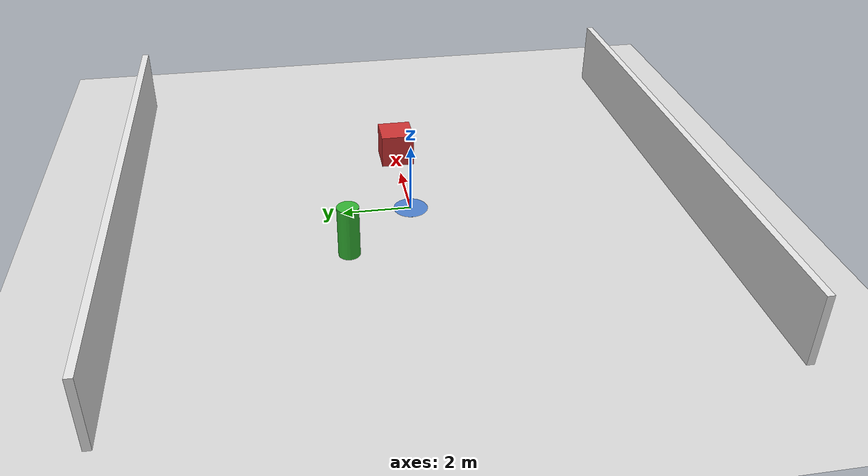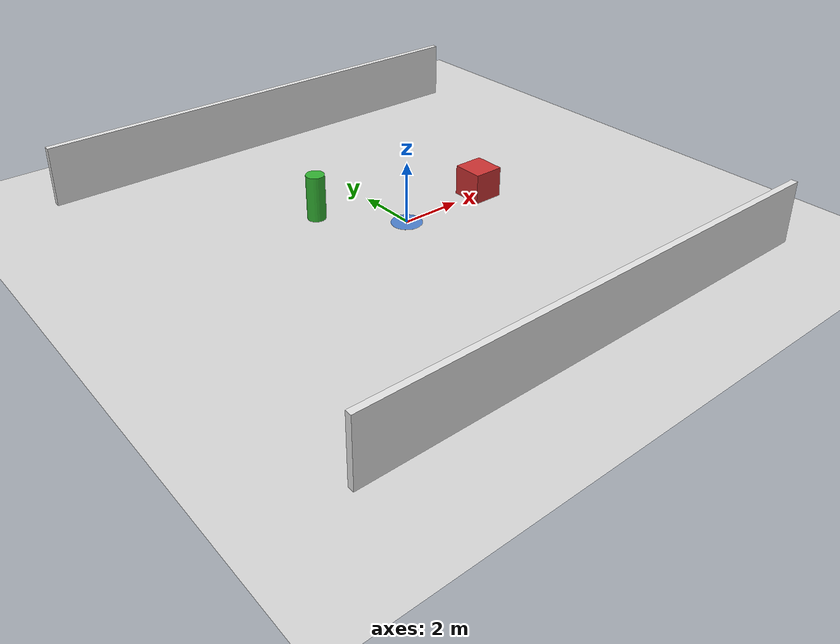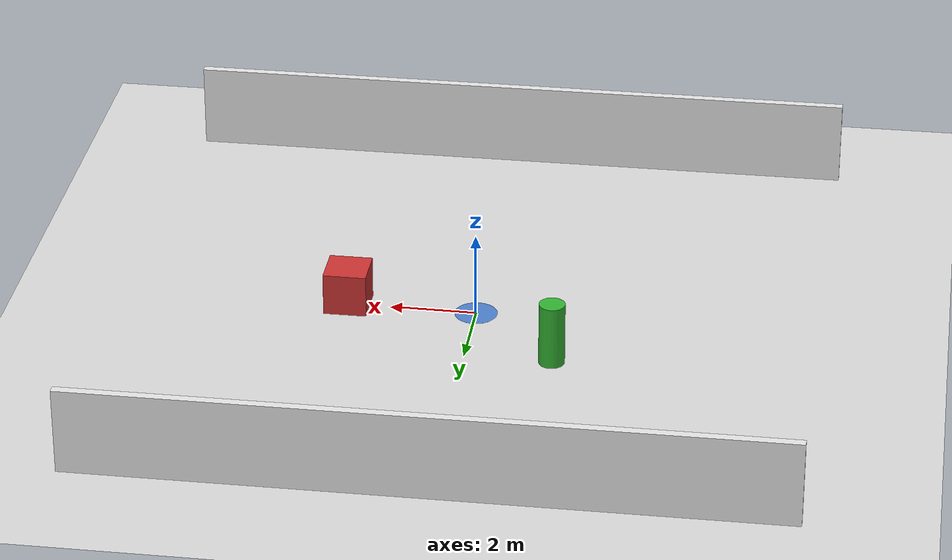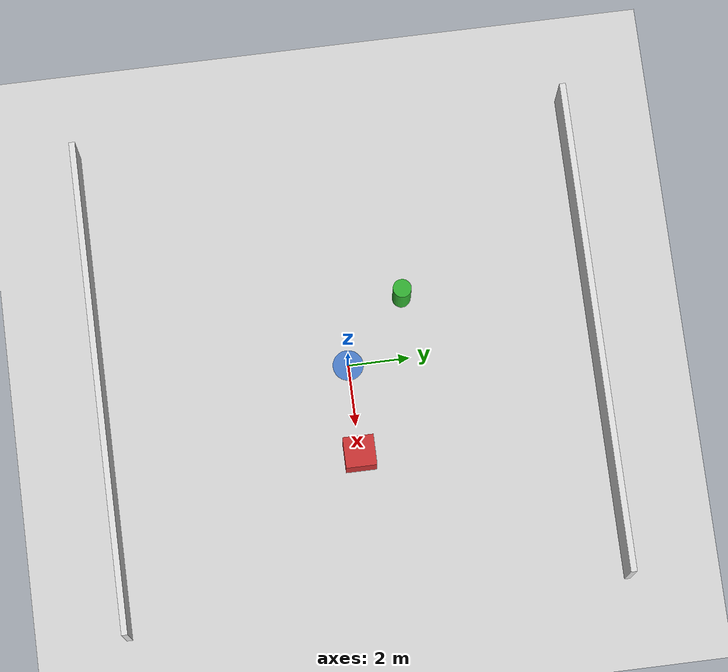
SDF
<?xml version="1.0" ?>
<sdf version="1.6">
  <world name="simple_lab">

    <!-- Physics Configuration -->
    <physics type="ode">
      <real_time_update_rate>1000</real_time_update_rate>
      <max_step_size>0.001</max_step_size>
      <real_time_factor>1</real_time_factor>
      <ode>
        <solver>
          <type>quick</type>
          <iters>50</iters>
          <sor>1.3</sor>
        </solver>
        <constraints>
          <cfm>0.0</cfm>
          <erp>0.2</erp>
          <contact_max_correcting_vel>100</contact_max_correcting_vel>
          <contact_surface_layer>0.001</contact_surface_layer>
        </constraints>
      </ode>
    </physics>

    <!-- Scene Configuration -->
    <scene>
      <ambient>0.4 0.4 0.4 1</ambient>
      <background>0.7 0.7 0.7 1</background>
      <shadows>true</shadows>
    </scene>

    <!-- Sun Light -->
    <light type="directional" name="sun">
      <cast_shadows>true</cast_shadows>
      <pose>0 0 10 0 0 0</pose>
      <diffuse>0.8 0.8 0.8 1</diffuse>
      <specular>0.2 0.2 0.2 1</specular>
      <direction>-0.5 0.1 -0.9</direction>
    </light>

    <!-- Fill Light (reduces harsh shadows) -->
    <light type="directional" name="fill_light">
      <cast_shadows>false</cast_shadows>
      <pose>0 0 10 0 0 0</pose>
      <diffuse>0.3 0.3 0.3 1</diffuse>
      <specular>0.0 0.0 0.0 1</specular>
      <direction>0.5 -0.1 -0.5</direction>
    </light>

    <!-- Ground Plane -->
    <model name="ground_plane">
      <static>true</static>
      <link name="link">
        <collision name="collision">
          <geometry>
            <plane>
              <normal>0 0 1</normal>
              <size>20 20</size>
            </plane>
          </geometry>
          <surface>
            <friction>
              <ode>
                <mu>1.0</mu>
                <mu2>1.0</mu2>
              </ode>
            </friction>
            <bounce>
              <restitution_coefficient>0.0</restitution_coefficient>
              <threshold>1e5</threshold>
            </bounce>
          </surface>
        </collision>
        <visual name="visual">
          <geometry>
            <plane>
              <normal>0 0 1</normal>
              <size>20 20</size>
            </plane>
          </geometry>
          <material>
            <ambient>0.85 0.85 0.85 1</ambient>
            <diffuse>0.85 0.85 0.85 1</diffuse>
            <specular>0.1 0.1 0.1 1</specular>
          </material>
        </visual>
      </link>
    </model>

    <!-- Lab Floor Marker (center reference) -->
    <model name="center_marker">
      <static>true</static>
      <pose>0 0 0.001 0 0 0</pose>
      <link name="link">
        <visual name="visual">
          <geometry>
            <cylinder>
              <radius>0.5</radius>
              <length>0.001</length>
            </cylinder>
          </geometry>
          <material>
            <ambient>0.3 0.5 0.8 1</ambient>
            <diffuse>0.3 0.5 0.8 1</diffuse>
          </material>
        </visual>
      </link>
    </model>

    <!-- Example Static Obstacle: Red Box -->
    <model name="obstacle_box">
      <static>true</static>
      <pose>3 0 0.5 0 0 0</pose>
      <link name="link">
        <collision name="collision">
          <geometry>
            <box>
              <size>1 1 1</size>
            </box>
          </geometry>
        </collision>
        <visual name="visual">
          <geometry>
            <box>
              <size>1 1 1</size>
            </box>
          </geometry>
          <material>
            <ambient>0.8 0.2 0.2 1</ambient>
            <diffuse>0.8 0.2 0.2 1</diffuse>
          </material>
        </visual>
      </link>
    </model>

    <!-- Example Static Obstacle: Green Cylinder -->
    <model name="obstacle_cylinder">
      <static>true</static>
      <pose>-2 2 0.75 0 0 0</pose>
      <link name="link">
        <collision name="collision">
          <geometry>
            <cylinder>
              <radius>0.3</radius>
              <length>1.5</length>
            </cylinder>
          </geometry>
        </collision>
        <visual name="visual">
          <geometry>
            <cylinder>
              <radius>0.3</radius>
              <length>1.5</length>
            </cylinder>
          </geometry>
          <material>
            <ambient>0.2 0.7 0.2 1</ambient>
            <diffuse>0.2 0.7 0.2 1</diffuse>
          </material>
        </visual>
      </link>
    </model>

    <!-- Boundary Walls (optional - comment out if not needed) -->
    <model name="wall_north">
      <static>true</static>
      <pose>0 8 1 0 0 0</pose>
      <link name="link">
        <collision name="collision">
          <geometry>
            <box>
              <size>16 0.2 2</size>
            </box>
          </geometry>
        </collision>
        <visual name="visual">
          <geometry>
            <box>
              <size>16 0.2 2</size>
            </box>
          </geometry>
          <material>
            <ambient>0.9 0.9 0.9 1</ambient>
            <diffuse>0.9 0.9 0.9 1</diffuse>
          </material>
        </visual>
      </link>
    </model>

    <model name="wall_south">
      <static>true</static>
      <pose>0 -8 1 0 0 0</pose>
      <link name="link">
        <collision name="collision">
          <geometry>
            <box>
              <size>16 0.2 2</size>
            </box>
          </geometry>
        </collision>
        <visual name="visual">
          <geometry>
            <box>
              <size>16 0.2 2</size>
            </box>
          </geometry>
          <material>
            <ambient>0.9 0.9 0.9 1</ambient>
            <diffuse>0.9 0.9 0.9 1</diffuse>
          </material>
        </visual>
      </link>
    </model>

    <!-- Gazebo ROS 2 State Plugin -->
    <plugin name="gazebo_ros_state" filename="libgazebo_ros_state.so">
      <ros>
        <namespace>/gazebo</namespace>
      </ros>
      <update_rate>50</update_rate>
    </plugin>

  </world>
</sdf>
